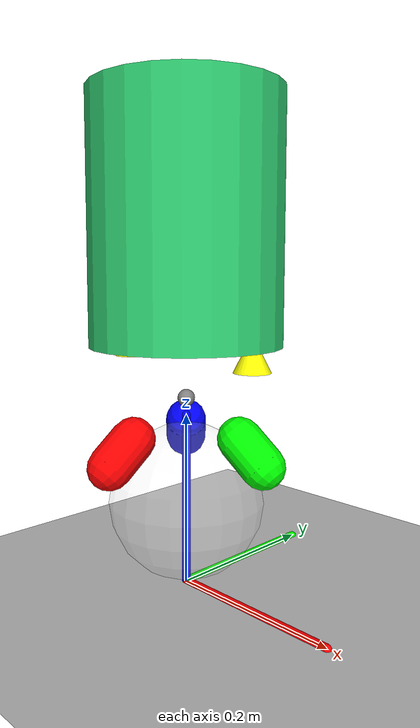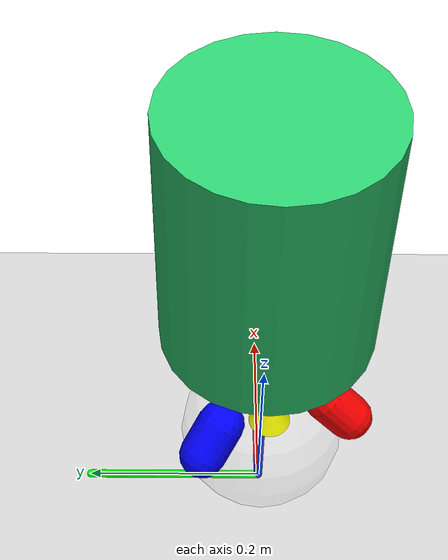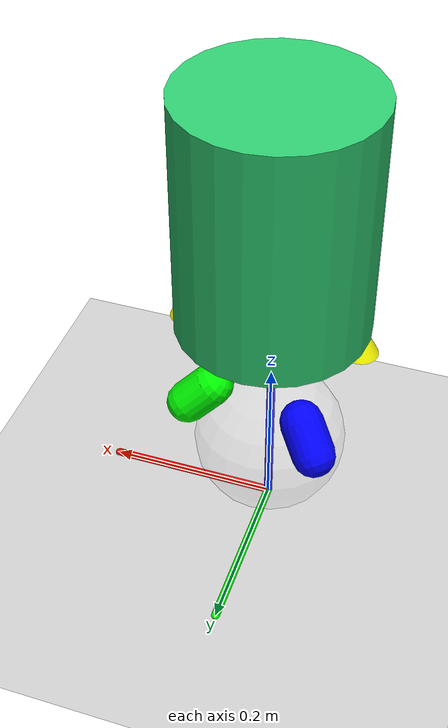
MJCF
<mujoco model="ballbot">
  <compiler meshdir="stl_files" texturedir="textures" /> <!--path is relative to the xml file-->
  <option timestep="0.001" />
  <option cone="elliptic"/>

  <asset>
    <mesh name="base_mesh" file="tower.stl" scale="0.001 0.001 0.001"/> <!-- rescaling because freecad uses mm but mujoco uses meters-->
    <mesh name="omni_mesh_0" file="omniwheel_0.stl" scale="0.001 0.001 0.001"/> <!-- rescaling because freecad uses mm but mujoco uses meters-->
    <mesh name="omni_mesh_1" file="omniwheel_1.stl" scale="0.001 0.001 0.001"/> <!-- rescaling because freecad uses mm but mujoco uses meters-->
    <mesh name="omni_mesh_2" file="omniwheel_2.stl" scale="0.001 0.001 0.001"/> <!-- rescaling because freecad uses mm but mujoco uses meters-->
    <mesh name="cone_mesh" file="cone.stl" scale="0.01 0.01 0.01"/>
    <!-- sphere_small < sphere < sphere_2 -->
    <mesh name="sphere_mesh" file="sphere_small.stl" scale="0.001 0.001 0.001"/> <!-- rescaling because freecad uses mm but mujoco uses meters-->
    <texture name="grid" type="2d" builtin="checker" rgb1=".1 .2 .3" rgb2=".2 .3 .4" width="300" height="300"/>
    <material name="grid" texture="grid" texrepeat="8 8" reflectance=".2"/>
    <texture name="basketball_tex" type="2d" file="basketball_texture.png"/>
    <material name="basketball_mat" texture="basketball_tex" shininess="0.2"/>
    <texture name="metal_tex" type="2d" file="texture_metal.png" random="0.5"/>
    <material name="metal_mat" texture="metal_tex" shininess="0.2" texuniform="false" texrepeat="2 2" />
  </asset>

  <worldbody>

    <geom name="x_axis" type="capsule" fromto="0 0 0 0.2 0 0" size="0.005" rgba="1 0 0 1" contype="0" conaffinity="0"/>
    <geom name="y_axis" type="capsule" fromto="0 0 0 0 0.2 0" size="0.005" rgba="0 1 0 1" contype="0" conaffinity="0"/>
    <geom name="z_axis" type="capsule" fromto="0 0 0 0 0 0.2" size="0.005" rgba="0 0 1 1" contype="0" conaffinity="0"/>

    <light name="top" pos="0 0 1.0"/>
    <geom name="ground" type="plane" size="5 5 0.1" pos="0 0 0" rgba="0.8 0.8 0.8 1" material="grid" friction="3.0"/>
    <!-- Base body with a free joint -->
    <body name="base" pos="0 0 0.22" euler="0 0 0">

      <freejoint />
      <!-- density is in kg/m^3. I'll trust mujoco's volume computation, and since the tower is around 1.7kg (with electronics, wheels and cover), I'm fixing the density such that the value  -->
      <!-- that is returned by model.body("base").mass is ~1.55. Wheel mass will be added independently. Not specifying intertia matrix since Mujoco's estimate is probably better than mine -->
      <!-- if you want to use the convex hull for collision, uncomment the following line and comment the two ones that follow it -->
      <!-- to not use the convex hull but instead use the mesh for visual+inertial properties and rely on a cylinder for collisions, comment the line above and uncomment the two below  -->
      -->
      <geom name="tower_collision" type="cylinder"  size="0.11 0.14" pos="0 0 0.2" density="23.6" rgba="0.18 0.8 0.44 1.0"  />
      <geom name="ballast" type="box" size="0.1 0.1  0.1" rgba="0.5 0.5 0.0 0.5" density="400" pos="0 0 0.002" contype="0" conaffinity="0" group="3"/>   to lower center of mass

      <body name="cam_0_body" pos="0.1 0 0.06" euler="180 0 0">
        <geom name="cam_0_geom" type="mesh" mesh="cone_mesh" rgba="1.0 1.0 0.0 1.0" density="1.0" pos="0 0 0"/>
        <camera name="cam_0" pos="0 0 0" euler="180 0 0" fovy="90"/>
      </body>

      <body name="cam_1_body" pos="-0.1 0 0.06" euler="180 0 0">
        <geom name="cam_1_geom" type="mesh" mesh="cone_mesh" rgba="1.0 1.0 0.0 1.0" density="1.0" pos="0 0 0"/>
        <camera name="cam_1" pos="0 0 0" euler="180 0 0" fovy="90"/>
      </body>

      <body name="wheel_0" pos="0 0 -0.001" euler="0 0 0">
        <!--each omniwheel is about 0.054kg on the real robot-->
         <geom name="wheel_mesh_0" type="capsule"  size="0.025 0.02" euler="-45 9 0" pos="-0.018 -0.08 -0.053" density="620.0" rgba="1 0 0 1" material="grid"/>
        <!--axis orientation from feedcad's python api, pos offset set manually-->
        <joint name="wheel_joint_0" type="hinge" axis="-0.15316554764123935 -0.6903189805903613 -0.7071067953657663" pos="0 0 0.0293" armature="0.005" damping="0.8"/>
      </body>

      <body name="wheel_1" pos="0 0 -0.001" euler="0 0 120">
        <!--each omniwheel is about 0.054kg on the real robot-->
        <geom name="wheel_mesh_1" type="capsule"  size="0.025 0.02" euler="-45 9 0" pos="-0.018 -0.08 -0.053" density="620.0" rgba="0 1 0 1" material="grid"/>
        <!--axis orientation from feedcad's python api, pos offset set manually-->
        <joint name="wheel_joint_1" type="hinge" axis="-0.15316554764123935 -0.6903189805903613 -0.7071067953657663" pos="0 0 0.0293" armature="0.005" damping="0.8"/>
      </body>

      <body name="wheel_2" pos="0 0 -0.001" euler="0 0 240">
        <!--each omniwheel is about 0.054kg on the real robot-->
        <geom name="wheel_mesh_2" type="capsule"  size="0.025 0.02" euler="-45 9 0" pos="-0.018 -0.08 -0.053" density="620.0" rgba="0 0 1 1" material="grid"/>
        <!--axis orientation from feedcad's python api, pos offset set manually-->
        <joint name="wheel_joint_2" type="hinge" axis="-0.15316554764123935 -0.6903189805903613 -0.7071067953657663" pos="0 0 0.0293" armature="0.005" damping="0.8"/>
      </body>

      <site name="imu_site" pos="0 0 0" size="0.01"/>

    </body>

    <body name="ball" pos="0 0.0 0.24">
      <freejoint />
      <!--the basketball should be around 0.6kg-->
      <geom name="sphere" type="sphere" size="0.09" pos="0 0 -0.14" rgba="1 1 1 0.2" density="55" material="basketball_mat" />
    </body>
  </worldbody>

  <actuator>
    <!-- 600 deg/s is about 100rpm-->

    <!--torque control - easier to model. Note that gear just seems to scale the torque.-->
    <motor name="motor_0" joint="wheel_joint_0" gear="1" ctrlrange="-10 10" />
    <motor name="motor_1" joint="wheel_joint_1" gear="1" ctrlrange="-10 10" />
    <motor name="motor_2" joint="wheel_joint_2" gear="1" ctrlrange="-10 10" />
  </actuator>

  <contact>
    <!--definitely the correct friction order-->
    <pair name="non-isotropic0" geom1="sphere" geom2="wheel_mesh_0" condim="3" friction="0.001 1.0"/>
    <pair name="non-isotropic1" geom1="sphere" geom2="wheel_mesh_1" condim="3" friction="0.001 1.0"/>
    <pair name="non-isotropic2" geom1="sphere" geom2="wheel_mesh_2" condim="3" friction="0.001 1.0"/>
  </contact>

  <sensor>
    <accelerometer name="imu_accel" site="imu_site"/>
    <gyro name="imu_gyro" site="imu_site"/>
  </sensor>

</mujoco>
